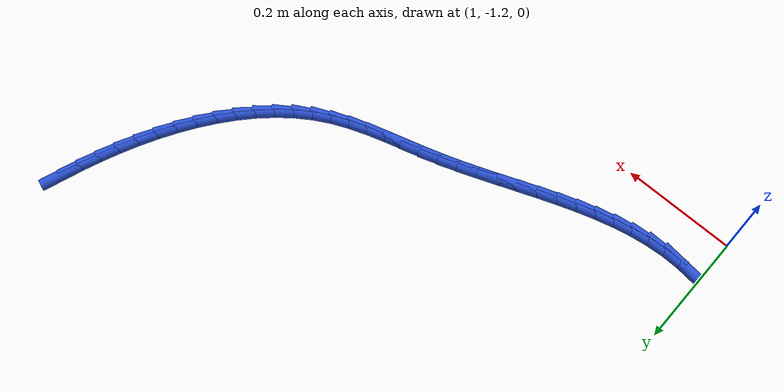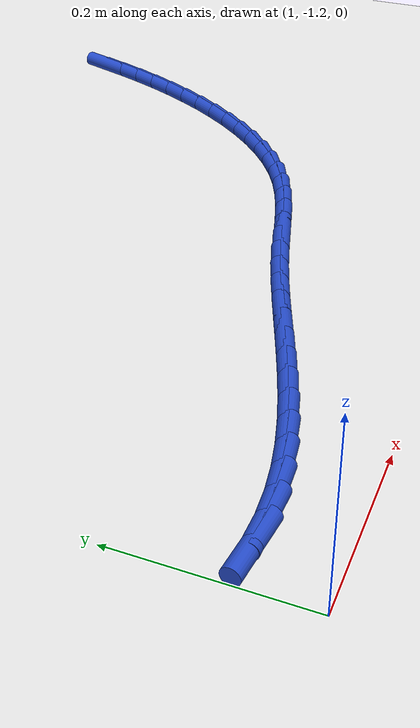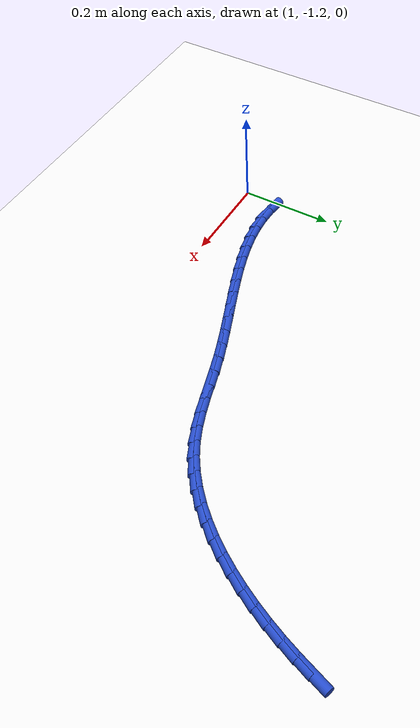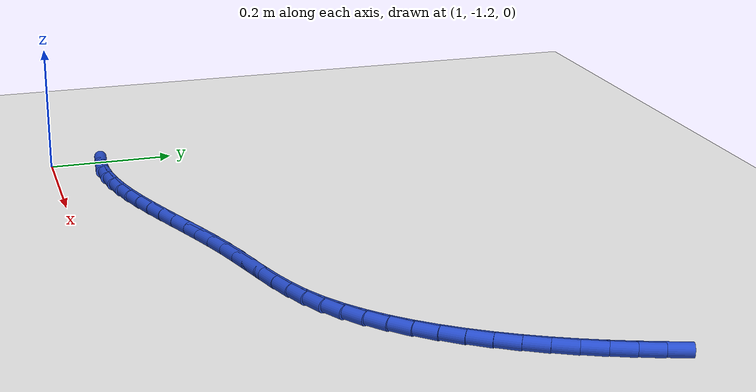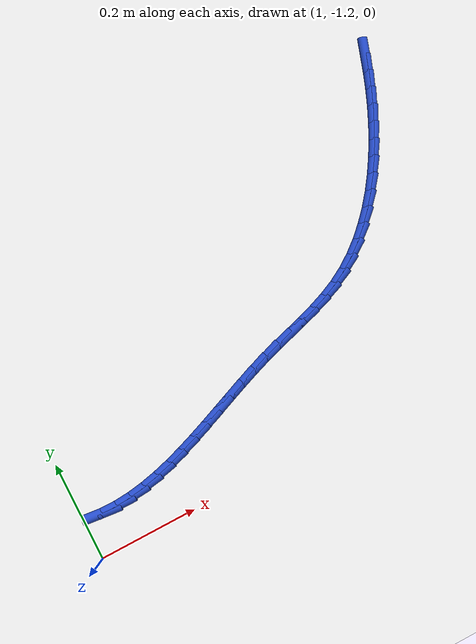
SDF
<sdf version="1.6">
 <world name="default">
  <model name="ground_plane">
   <static>1</static>
   <link name="link">
    <collision name="collision">
     <geometry><plane><normal>0 0 1</normal><size>100 100</size></plane></geometry>
     <surface><friction><ode><mu>100</mu><mu2>50</mu2></ode></friction></surface>
    </collision>
    <visual name="visual">
     <cast_shadows>0</cast_shadows>
     <geometry><plane><normal>0 0 1</normal><size>100 100</size></plane></geometry>
     <material>
      <script><uri>file://media/materials/scripts/gazebo.material</uri><name>Gazebo/WhiteGlow</name></script>
     </material>
    </visual>
   </link>
  </model>
  <model name="line">
   <link name="link_117">
    <pose>1.9195563936682445 -0.5669146474368705 0.01 0 1.57 1.2378128336935565</pose>
    <collision name="collision">
     <geometry><cylinder><radius>0.01</radius><length>0.08</length></cylinder></geometry>
    </collision>
    <visual name="visual">
     <material>
      <script><name>Gazebo/Blue</name><uri>file://media/materials/scripts/gazebo.material</uri></script>
     </material>
     <geometry><cylinder><radius>0.01</radius><length>0.08</length></cylinder></geometry>
    </visual>
   </link>
   <link name="link_118">
    <pose>1.9085025854247935 -0.5988748344283257 0.01 0 1.57 1.2046288616096408</pose>
    <collision name="collision">
     <geometry><cylinder><radius>0.01</radius><length>0.08</length></cylinder></geometry>
    </collision>
    <visual name="visual">
     <material>
      <script><name>Gazebo/Blue</name><uri>file://media/materials/scripts/gazebo.material</uri></script>
     </material>
     <geometry><cylinder><radius>0.01</radius><length>0.08</length></cylinder></geometry>
    </visual>
   </link>
   <link name="link_119">
    <pose>1.8962458414104018 -0.6308383380762853 0.01 0 1.57 1.1691498446418072</pose>
    <collision name="collision">
     <geometry><cylinder><radius>0.01</radius><length>0.08</length></cylinder></geometry>
    </collision>
    <visual name="visual">
     <material>
      <script><name>Gazebo/Blue</name><uri>file://media/materials/scripts/gazebo.material</uri></script>
     </material>
     <geometry><cylinder><radius>0.01</radius><length>0.08</length></cylinder></geometry>
    </visual>
   </link>
   <link name="link_120">
    <pose>1.882713097675282 -0.6626999269358705 0.01 0 1.57 1.1314023656314058</pose>
    <collision name="collision">
     <geometry><cylinder><radius>0.01</radius><length>0.08</length></cylinder></geometry>
    </collision>
    <visual name="visual">
     <material>
      <script><name>Gazebo/Blue</name><uri>file://media/materials/scripts/gazebo.material</uri></script>
     </material>
     <geometry><cylinder><radius>0.01</radius><length>0.08</length></cylinder></geometry>
    </visual>
   </link>
   <link name="link_121">
    <pose>1.867889193480861 -0.6942374390488032 0.01 0 1.57 1.0908991073858734</pose>
    <collision name="collision">
     <geometry><cylinder><radius>0.01</radius><length>0.08</length></cylinder></geometry>
    </collision>
    <visual name="visual">
     <material>
      <script><name>Gazebo/Blue</name><uri>file://media/materials/scripts/gazebo.material</uri></script>
     </material>
     <geometry><cylinder><radius>0.01</radius><length>0.08</length></cylinder></geometry>
    </visual>
   </link>
   <link name="link_122">
    <pose>1.8517613024662114 -0.7252239983835962 0.01 0 1.57 1.047106055283085</pose>
    <collision name="collision">
     <geometry><cylinder><radius>0.01</radius><length>0.08</length></cylinder></geometry>
    </collision>
    <visual name="visual">
     <material>
      <script><name>Gazebo/Blue</name><uri>file://media/materials/scripts/gazebo.material</uri></script>
     </material>
     <geometry><cylinder><radius>0.01</radius><length>0.08</length></cylinder></geometry>
    </visual>
   </link>
   <link name="link_123">
    <pose>1.834316598270405 -0.7554327289087628 0.01 0 1.57 0.9994509186605206</pose>
    <collision name="collision">
     <geometry><cylinder><radius>0.01</radius><length>0.08</length></cylinder></geometry>
    </collision>
    <visual name="visual">
     <material>
      <script><name>Gazebo/Blue</name><uri>file://media/materials/scripts/gazebo.material</uri></script>
     </material>
     <geometry><cylinder><radius>0.01</radius><length>0.08</length></cylinder></geometry>
    </visual>
   </link>
   <link name="link_124">
    <pose>1.8155422545325155 -0.7846367545928161 0.01 0 1.57 0.9473232625060276</pose>
    <collision name="collision">
     <geometry><cylinder><radius>0.01</radius><length>0.08</length></cylinder></geometry>
    </collision>
    <visual name="visual">
     <material>
      <script><name>Gazebo/Blue</name><uri>file://media/materials/scripts/gazebo.material</uri></script>
     </material>
     <geometry><cylinder><radius>0.01</radius><length>0.08</length></cylinder></geometry>
    </visual>
   </link>
   <link name="link_125">
    <pose>1.7954254448916147 -0.812609199404269 0.01 0 1.57 0.8900838004917755</pose>
    <collision name="collision">
     <geometry><cylinder><radius>0.01</radius><length>0.08</length></cylinder></geometry>
    </collision>
    <visual name="visual">
     <material>
      <script><name>Gazebo/Blue</name><uri>file://media/materials/scripts/gazebo.material</uri></script>
     </material>
     <geometry><cylinder><radius>0.01</radius><length>0.08</length></cylinder></geometry>
    </visual>
   </link>
   <link name="link_126">
    <pose>1.773953342986776 -0.8391231873116353 0.01 0 1.57 0.8270874695221176</pose>
    <collision name="collision">
     <geometry><cylinder><radius>0.01</radius><length>0.08</length></cylinder></geometry>
    </collision>
    <visual name="visual">
     <material>
      <script><name>Gazebo/Blue</name><uri>file://media/materials/scripts/gazebo.material</uri></script>
     </material>
     <geometry><cylinder><radius>0.01</radius><length>0.08</length></cylinder></geometry>
    </visual>
   </link>
   <link name="link_127">
    <pose>1.7511131224570713 -0.8639518422834273 0.01 0 1.57 0.7577262803854039</pose>
    <collision name="collision">
     <geometry><cylinder><radius>0.01</radius><length>0.08</length></cylinder></geometry>
    </collision>
    <visual name="visual">
     <material>
      <script><name>Gazebo/Blue</name><uri>file://media/materials/scripts/gazebo.material</uri></script>
     </material>
     <geometry><cylinder><radius>0.01</radius><length>0.08</length></cylinder></geometry>
    </visual>
   </link>
   <link name="link_128">
    <pose>1.7268919569415737 -0.8868682882881589 0.01 0 1.57 0.6814982486217279</pose>
    <collision name="collision">
     <geometry><cylinder><radius>0.01</radius><length>0.08</length></cylinder></geometry>
    </collision>
    <visual name="visual">
     <material>
      <script><name>Gazebo/Blue</name><uri>file://media/materials/scripts/gazebo.material</uri></script>
     </material>
     <geometry><cylinder><radius>0.01</radius><length>0.08</length></cylinder></geometry>
    </visual>
   </link>
   <link name="link_129">
    <pose>1.7012770200793554 -0.9076456492943425 0.01 0 1.57 0.5981062297191235</pose>
    <collision name="collision">
     <geometry><cylinder><radius>0.01</radius><length>0.08</length></cylinder></geometry>
    </collision>
    <visual name="visual">
     <material>
      <script><name>Gazebo/Blue</name><uri>file://media/materials/scripts/gazebo.material</uri></script>
     </material>
     <geometry><cylinder><radius>0.01</radius><length>0.08</length></cylinder></geometry>
    </visual>
   </link>
   <link name="link_130">
    <pose>1.6742554855094895 -0.9260570492704919 0.01 0 1.57 0.5076706117894836</pose>
    <collision name="collision">
     <geometry><cylinder><radius>0.01</radius><length>0.08</length></cylinder></geometry>
    </collision>
    <visual name="visual">
     <material>
      <script><name>Gazebo/Blue</name><uri>file://media/materials/scripts/gazebo.material</uri></script>
     </material>
     <geometry><cylinder><radius>0.01</radius><length>0.08</length></cylinder></geometry>
    </visual>
   </link>
   <link name="link_131">
    <pose>1.6458153816557157 -0.9418784063828343 0.01 0 1.57 0.4198495457803649</pose>
    <collision name="collision">
     <geometry><cylinder><radius>0.01</radius><length>0.08</length></cylinder></geometry>
    </collision>
    <visual name="visual">
     <material>
      <script><name>Gazebo/Blue</name><uri>file://media/materials/scripts/gazebo.material</uri></script>
     </material>
     <geometry><cylinder><radius>0.01</radius><length>0.08</length></cylinder></geometry>
    </visual>
   </link>
   <link name="link_132">
    <pose>1.616032694549546 -0.9551731626103398 0.01 0 1.57 0.3525786651707867</pose>
    <collision name="collision">
     <geometry><cylinder><radius>0.01</radius><length>0.08</length></cylinder></geometry>
    </collision>
    <visual name="visual">
     <material>
      <script><name>Gazebo/Blue</name><uri>file://media/materials/scripts/gazebo.material</uri></script>
     </material>
     <geometry><cylinder><radius>0.01</radius><length>0.08</length></cylinder></geometry>
    </visual>
   </link>
   <link name="link_133">
    <pose>1.5851464900715222 -0.9665378501462627 0.01 0 1.57 0.307828345362706</pose>
    <collision name="collision">
     <geometry><cylinder><radius>0.01</radius><length>0.08</length></cylinder></geometry>
    </collision>
    <visual name="visual">
     <material>
      <script><name>Gazebo/Blue</name><uri>file://media/materials/scripts/gazebo.material</uri></script>
     </material>
     <geometry><cylinder><radius>0.01</radius><length>0.08</length></cylinder></geometry>
    </visual>
   </link>
   <link name="link_134">
    <pose>1.5534135331948682 -0.9766268575846676 0.01 0 1.57 0.2849396479691167</pose>
    <collision name="collision">
     <geometry><cylinder><radius>0.01</radius><length>0.08</length></cylinder></geometry>
    </collision>
    <visual name="visual">
     <material>
      <script><name>Gazebo/Blue</name><uri>file://media/materials/scripts/gazebo.material</uri></script>
     </material>
     <geometry><cylinder><radius>0.01</radius><length>0.08</length></cylinder></geometry>
    </visual>
   </link>
   <link name="link_135">
    <pose>1.5210905888928077 -0.9860945735196203 0.01 0 1.57 0.28311942283693103</pose>
    <collision name="collision">
     <geometry><cylinder><radius>0.01</radius><length>0.08</length></cylinder></geometry>
    </collision>
    <visual name="visual">
     <material>
      <script><name>Gazebo/Blue</name><uri>file://media/materials/scripts/gazebo.material</uri></script>
     </material>
     <geometry><cylinder><radius>0.01</radius><length>0.08</length></cylinder></geometry>
    </visual>
   </link>
   <link name="link_136">
    <pose>1.488434422138564 -0.995595386545186 0.01 0 1.57 0.3017114702785385</pose>
    <collision name="collision">
     <geometry><cylinder><radius>0.01</radius><length>0.08</length></cylinder></geometry>
    </collision>
    <visual name="visual">
     <material>
      <script><name>Gazebo/Blue</name><uri>file://media/materials/scripts/gazebo.material</uri></script>
     </material>
     <geometry><cylinder><radius>0.01</radius><length>0.08</length></cylinder></geometry>
    </visual>
   </link>
   <link name="link_137">
    <pose>1.4557014276407398 -1.0057823030640882 0.01 0 1.57 0.33193196100011496</pose>
    <collision name="collision">
     <geometry><cylinder><radius>0.01</radius><length>0.08</length></cylinder></geometry>
    </collision>
    <visual name="visual">
     <material>
      <script><name>Gazebo/Blue</name><uri>file://media/materials/scripts/gazebo.material</uri></script>
     </material>
     <geometry><cylinder><radius>0.01</radius><length>0.08</length></cylinder></geometry>
    </visual>
   </link>
   <link name="link_138">
    <pose>1.4230731164382078 -1.0170287900518906 0.01 0 1.57 0.3553150860934674</pose>
    <collision name="collision">
     <geometry><cylinder><radius>0.01</radius><length>0.08</length></cylinder></geometry>
    </collision>
    <visual name="visual">
     <material>
      <script><name>Gazebo/Blue</name><uri>file://media/materials/scripts/gazebo.material</uri></script>
     </material>
     <geometry><cylinder><radius>0.01</radius><length>0.08</length></cylinder></geometry>
    </visual>
   </link>
   <link name="link_139">
    <pose>1.390565664333803 -1.029091120944657 0.01 0 1.57 0.3696798223380704</pose>
    <collision name="collision">
     <geometry><cylinder><radius>0.01</radius><length>0.08</length></cylinder></geometry>
    </collision>
    <visual name="visual">
     <material>
      <script><name>Gazebo/Blue</name><uri>file://media/materials/scripts/gazebo.material</uri></script>
     </material>
     <geometry><cylinder><radius>0.01</radius><length>0.08</length></cylinder></geometry>
    </visual>
   </link>
   <link name="link_140">
    <pose>1.3581731434150797 -1.0416430563965633 0.01 0 1.57 0.3752051607171408</pose>
    <collision name="collision">
     <geometry><cylinder><radius>0.01</radius><length>0.08</length></cylinder></geometry>
    </collision>
    <visual name="visual">
     <material>
      <script><name>Gazebo/Blue</name><uri>file://media/materials/scripts/gazebo.material</uri></script>
     </material>
     <geometry><cylinder><radius>0.01</radius><length>0.08</length></cylinder></geometry>
    </visual>
   </link>
   <link name="link_141">
    <pose>1.3258896257695942 -1.0543583570617858 0.01 0 1.57 0.371911474858744</pose>
    <collision name="collision">
     <geometry><cylinder><radius>0.01</radius><length>0.08</length></cylinder></geometry>
    </collision>
    <visual name="visual">
     <material>
      <script><name>Gazebo/Blue</name><uri>file://media/materials/scripts/gazebo.material</uri></script>
     </material>
     <geometry><cylinder><radius>0.01</radius><length>0.08</length></cylinder></geometry>
    </visual>
   </link>
   <link name="link_142">
    <pose>1.2937091834849002 -1.0669107835945015 0.01 0 1.57 0.3596469357367053</pose>
    <collision name="collision">
     <geometry><cylinder><radius>0.01</radius><length>0.08</length></cylinder></geometry>
    </collision>
    <visual name="visual">
     <material>
      <script><name>Gazebo/Blue</name><uri>file://media/materials/scripts/gazebo.material</uri></script>
     </material>
     <geometry><cylinder><radius>0.01</radius><length>0.08</length></cylinder></geometry>
    </visual>
   </link>
   <link name="link_143">
    <pose>1.2616258886485525 -1.0789740966488857 0.01 0 1.57 0.338086883098277</pose>
    <collision name="collision">
     <geometry><cylinder><radius>0.01</radius><length>0.08</length></cylinder></geometry>
    </collision>
    <visual name="visual">
     <material>
      <script><name>Gazebo/Blue</name><uri>file://media/materials/scripts/gazebo.material</uri></script>
     </material>
     <geometry><cylinder><radius>0.01</radius><length>0.08</length></cylinder></geometry>
    </visual>
   </link>
   <link name="link_144">
    <pose>1.2296338133481073 -1.0902220568791148 0.01 0 1.57 0.30674904619365834</pose>
    <collision name="collision">
     <geometry><cylinder><radius>0.01</radius><length>0.08</length></cylinder></geometry>
    </collision>
    <visual name="visual">
     <material>
      <script><name>Gazebo/Blue</name><uri>file://media/materials/scripts/gazebo.material</uri></script>
     </material>
     <geometry><cylinder><radius>0.01</radius><length>0.08</length></cylinder></geometry>
    </visual>
   </link>
   <link name="link_145">
    <pose>1.1977270296711184 -1.1003284249393652 0.01 0 1.57 0.26503306861940795</pose>
    <collision name="collision">
     <geometry><cylinder><radius>0.01</radius><length>0.08</length></cylinder></geometry>
    </collision>
    <visual name="visual">
     <material>
      <script><name>Gazebo/Blue</name><uri>file://media/materials/scripts/gazebo.material</uri></script>
     </material>
     <geometry><cylinder><radius>0.01</radius><length>0.08</length></cylinder></geometry>
    </visual>
   </link>
   <link name="link_146">
    <pose>1.1658996097051415 -1.1089669614838127 0.01 0 1.57 0.21229862204792238</pose>
    <collision name="collision">
     <geometry><cylinder><radius>0.01</radius><length>0.08</length></cylinder></geometry>
    </collision>
    <visual name="visual">
     <material>
      <script><name>Gazebo/Blue</name><uri>file://media/materials/scripts/gazebo.material</uri></script>
     </material>
     <geometry><cylinder><radius>0.01</radius><length>0.08</length></cylinder></geometry>
    </visual>
   </link>
   <link name="link_147">
    <pose>1.134145625537731 -1.1158114271666335 0.01 0 1.57 0.14800043161552975</pose>
    <collision name="collision">
     <geometry><cylinder><radius>0.01</radius><length>0.08</length></cylinder></geometry>
    </collision>
    <visual name="visual">
     <material>
      <script><name>Gazebo/Blue</name><uri>file://media/materials/scripts/gazebo.material</uri></script>
     </material>
     <geometry><cylinder><radius>0.01</radius><length>0.08</length></cylinder></geometry>
    </visual>
   </link>
   <link name="link_148">
    <pose>1.1024591492564422 -1.120535582642004 0.01 0 1.57 0.07189526523054678</pose>
    <collision name="collision">
     <geometry><cylinder><radius>0.01</radius><length>0.08</length></cylinder></geometry>
    </collision>
    <visual name="visual">
     <material>
      <script><name>Gazebo/Blue</name><uri>file://media/materials/scripts/gazebo.material</uri></script>
     </material>
     <geometry><cylinder><radius>0.01</radius><length>0.08</length></cylinder></geometry>
    </visual>
   </link>
   <link name="link_149">
    <pose>1.0708342529488295 -1.1228131885641002 0.01 0 1.57 -0.015636474352630016</pose>
    <collision name="collision">
     <geometry><cylinder><radius>0.01</radius><length>0.08</length></cylinder></geometry>
    </collision>
    <visual name="visual">
     <material>
      <script><name>Gazebo/Blue</name><uri>file://media/materials/scripts/gazebo.material</uri></script>
     </material>
     <geometry><cylinder><radius>0.01</radius><length>0.08</length></cylinder></geometry>
    </visual>
   </link>
   <link name="link_150">
    <pose>1.0392649633457034 -1.1223195159420258 0.01 0 1.57 -0.10650681308932639</pose>
    <collision name="collision">
     <geometry><cylinder><radius>0.01</radius><length>0.08</length></cylinder></geometry>
    </collision>
    <visual name="visual">
     <material>
      <script><name>Gazebo/Blue</name><uri>file://media/materials/scripts/gazebo.material</uri></script>
     </material>
     <geometry><cylinder><radius>0.01</radius><length>0.08</length></cylinder></geometry>
    </visual>
   </link>
  </model>
 </world>
</sdf>
